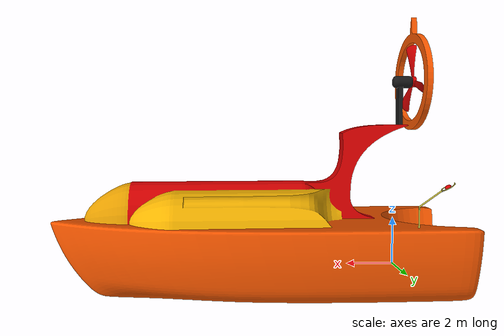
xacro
<?xml version="1.0"?>
<robot name="usv" xmlns:xacro="http://www.ros.org/wiki/xacro">
    <xacro:arg name="prefix" default="usv"/>

  <link name="$(arg prefix)/base_link">
    <visual>
    <geometry>
        <mesh filename="file://$(find ecn_usv)/urdf/hull.dae"  scale=".2 .2 .2"/>
      </geometry>
      <origin rpy="0 0 ${pi/2}"/>
    </visual>
  </link>

    <link name="$(arg prefix)/support">
    <visual>
    <geometry>
        <mesh filename="file://$(find ecn_usv)/urdf/support.dae"  scale=".2 .2 .2"/>
      </geometry>
    </visual>
  </link>

    <link name="$(arg prefix)/blades">
    <visual>
    <geometry>
        <mesh filename="file://$(find ecn_usv)/urdf/blades.dae" scale=".2 .2 .2"/>
    </geometry>
    </visual>
  </link>

  <joint name="support" type="revolute">
    <parent link="$(arg prefix)/base_link"/>
    <child link="$(arg prefix)/support"/>
    <axis xyz="0 0 1"/>
    <origin xyz="-0.2 0 6." rpy="0 0 ${pi/2}"/>
    <limit lower="-2" upper="2" velocity="20" effort="100"/>
  </joint>

  <joint name="blades" type="continuous">
    <parent link="$(arg prefix)/support"/>
    <child link="$(arg prefix)/blades"/>
    <axis xyz="0 1 0"/>
    <origin xyz="0 0.6 1.88"/>
  </joint>

</robot>
